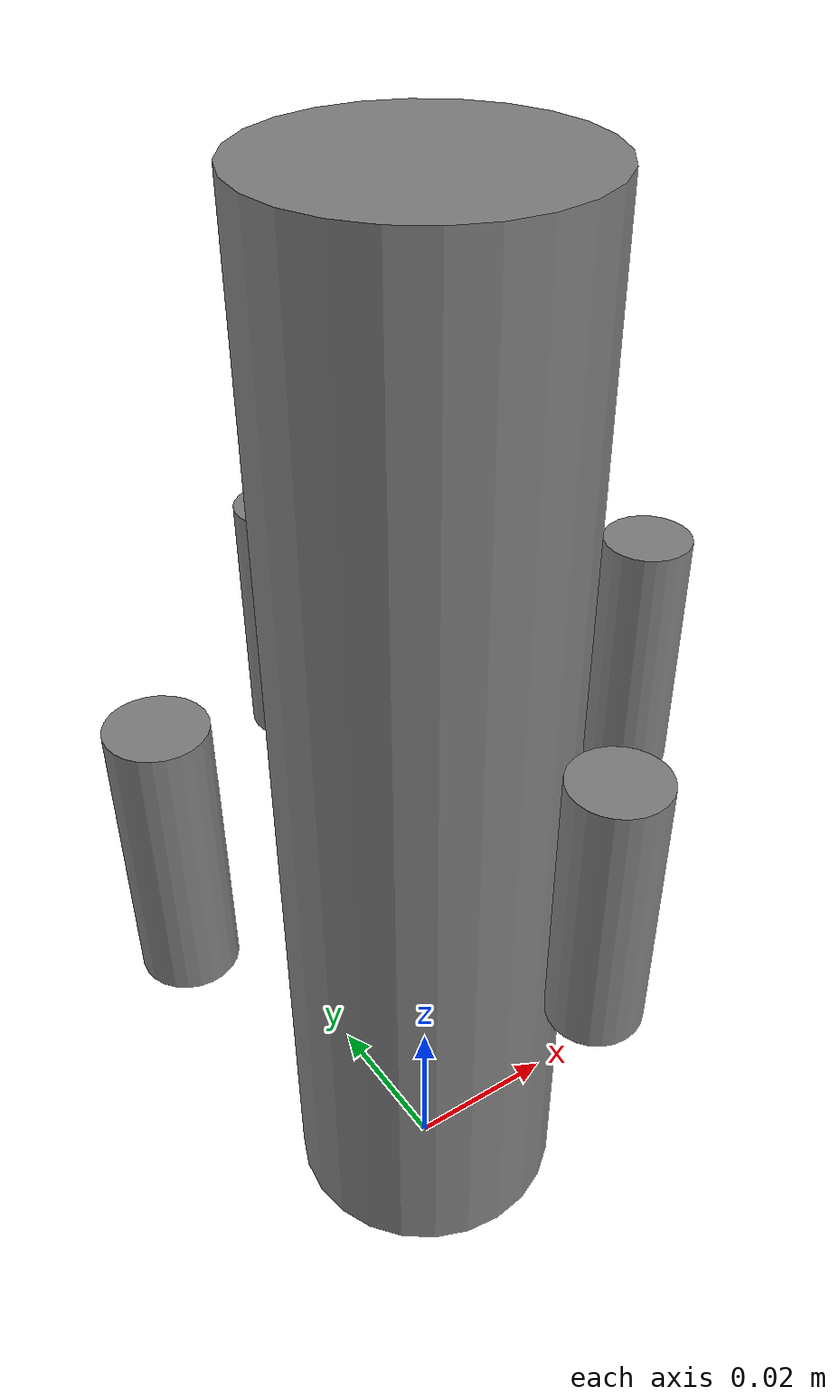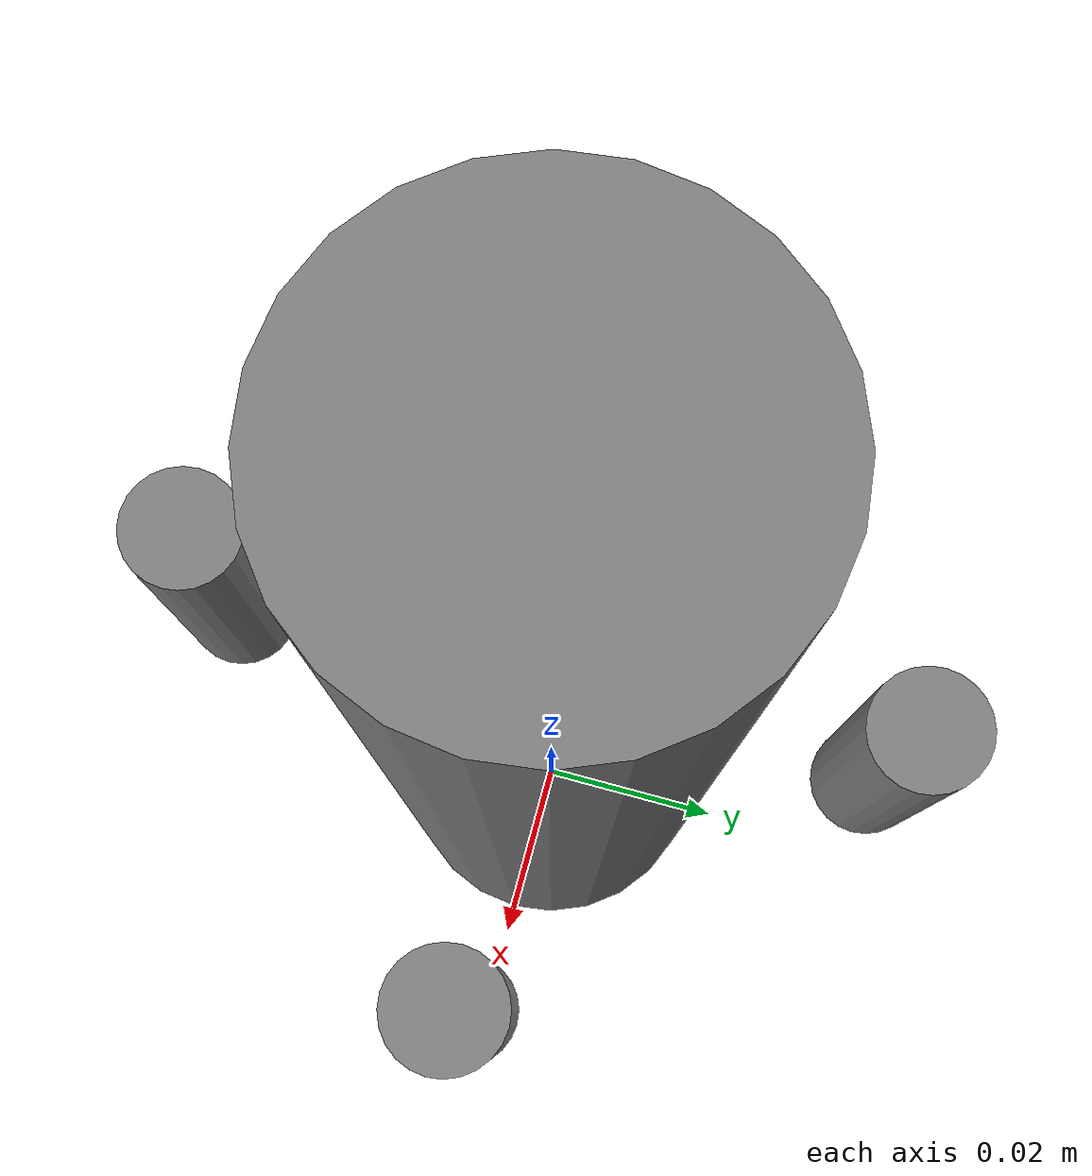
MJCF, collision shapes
<mujoco model="sauce">
	<compiler meshdir="assets" texturedir="assets" />
    <asset>
        <mesh name="sauce_mesh" file="sauce.obj" scale="0.011 0.011 0.011" />
	<texture name="texgeom" type="cube" builtin="gradient" width="128" height="128"
		 rgb1="1 0.1 0.3" rgb2="1 0.7 0.7"/>
	<material name='sauceObject' texture="texgeom" texuniform="true"/>
    </asset>

    <default>
        <default class="collision">
            <geom condim="6" group="0" />
        </default>
        <default class="visual">
        	<geom condim="6" conaffinity="0" contype="0" mass="0" gap="10"/>
        </default>
    </default>

    <worldbody>
      <light mode="targetbodycom" target="base_link" directional="false" diffuse=".8 .8 .8" specular="0.3 0.3 0.3" pos="0 0 4.0" dir="0 0 -1" active="false"/>
      <body name="base_link">
        <freejoint name="root" />
        <inertial pos="0 0 0.03" mass="0.2" diaginertia="0.0003 0.0003 0.000047"/>
        <geom class="collision" name ="collision" friction="1 0.01 0.03" type="cylinder" size="0.017 0.065" pos="0.0 0.0 0.065"/>
        <geom class="visual" group="1" type="mesh" mesh="sauce_mesh" material="sauceObject" />
        <geom name ="objectPos" class="visual" group="4" type="sphere" size="0.005"  pos="0.0 0.0 0.07" euler="0 0 0"/>
        <geom name ="grabbingPos1" class="visual" group="4" type="cylinder" size="0.005 0.015"  pos="0.03 0 0.07"/>
        <geom name ="grabbingPos2" class="visual" group="4" type="cylinder" size="0.005 0.015"  pos="-0.03 0 0.07"/>
        <geom name ="grabbingPos3" class="visual" group="4" type="cylinder" size="0.005 0.015"  pos="0 0.03 0.07"/>
        <geom name ="grabbingPos4" class="visual" group="4" type="cylinder" size="0.005 0.015"  pos="0 -0.03 0.07"/>
      </body>
    </worldbody>
</mujoco>
